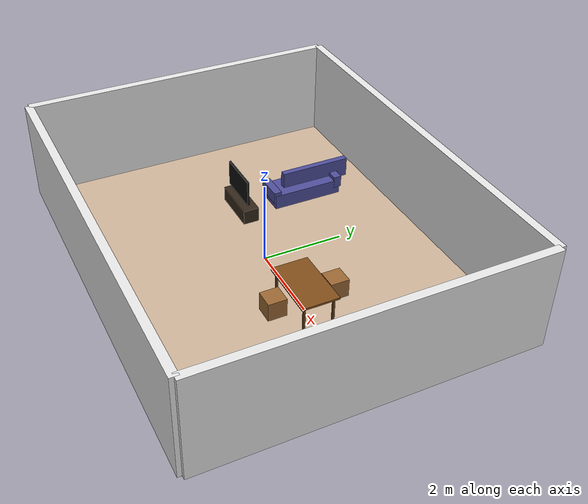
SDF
<?xml version="1.0" ?>
<sdf version="1.6">
  <world name="house">

    <!-- PLUGINS Gazebo Classic -->
    <plugin name="gazebo_ros_state" filename="libgazebo_ros_state.so"/>

    <!-- LUZ -->
    <light type="directional" name="sun">
      <cast_shadows>false</cast_shadows>
      <pose>0 0 10 0 0 0</pose>
      <diffuse>1 1 1 1</diffuse>
      <specular>0.2 0.2 0.2 1</specular>
      <direction>-0.5 0.1 -0.9</direction>
    </light>

    <!-- FÍSICA -->
    <physics type="ode">
      <real_time_update_rate>1000.0</real_time_update_rate>
      <max_step_size>0.001</max_step_size>
      <real_time_factor>1</real_time_factor>
    </physics>

    <!-- ESCENA -->
    <scene>
      <ambient>0.6 0.6 0.6 1</ambient>
      <background>0.8 0.8 0.8 1</background>
      <shadows>false</shadows>
    </scene>

    <!-- SUELO -->
    <model name="floor">
      <static>true</static>
      <pose>0 0 0 0 0 0</pose>
      <link name="link">
        <collision name="collision">
          <geometry><box><size>10 8 0.05</size></box></geometry>
        </collision>
        <visual name="visual">
          <geometry><box><size>10 8 0.05</size></box></geometry>
          <material>
            <ambient>0.8 0.7 0.6 1</ambient>
            <diffuse>0.8 0.7 0.6 1</diffuse>
          </material>
        </visual>
      </link>
    </model>

    <!-- ===== PAREDES EXTERIORES ===== -->

    <model name="wall_south">
      <static>true</static>
      <pose>0 -4 1.25 0 0 0</pose>
      <link name="link">
        <collision name="collision">
          <geometry><box><size>10 0.2 2.5</size></box></geometry>
        </collision>
        <visual name="visual">
          <geometry><box><size>10 0.2 2.5</size></box></geometry>
          <material><ambient>0.9 0.9 0.9 1</ambient></material>
        </visual>
      </link>
    </model>

    <model name="wall_north">
      <static>true</static>
      <pose>0 4 1.25 0 0 0</pose>
      <link name="link">
        <collision name="collision">
          <geometry><box><size>10 0.2 2.5</size></box></geometry>
        </collision>
        <visual name="visual">
          <geometry><box><size>10 0.2 2.5</size></box></geometry>
          <material><ambient>0.9 0.9 0.9 1</ambient></material>
        </visual>
      </link>
    </model>

    <model name="wall_west">
      <static>true</static>
      <pose>-5 0 1.25 0 0 0</pose>
      <link name="link">
        <collision name="collision">
          <geometry><box><size>0.2 8 2.5</size></box></geometry>
        </collision>
        <visual name="visual">
          <geometry><box><size>0.2 8 2.5</size></box></geometry>
          <material><ambient>0.9 0.9 0.9 1</ambient></material>
        </visual>
      </link>
    </model>

    <model name="wall_east">
      <static>true</static>
      <pose>5 0 1.25 0 0 0</pose>
      <link name="link">
        <collision name="collision">
          <geometry><box><size>0.2 8 2.5</size></box></geometry>
        </collision>
        <visual name="visual">
          <geometry><box><size>0.2 8 2.5</size></box></geometry>
          <material><ambient>0.9 0.9 0.9 1</ambient></material>
        </visual>
      </link>
    </model>

    <!-- ===== SALÓN ===== -->

    <!-- SOFÁ: base + respaldo + brazos -->
    <model name="sofa_base">
      <static>true</static>
      <pose>-2 2 0.2 0 0 -1.57</pose>
      <link name="link">
        <collision name="collision">
          <geometry><box><size>1.8 0.7 0.4</size></box></geometry>
        </collision>
        <visual name="visual">
          <geometry><box><size>1.8 0.7 0.4</size></box></geometry>
          <material><ambient>0.3 0.3 0.6 1</ambient><diffuse>0.3 0.3 0.6 1</diffuse></material>
        </visual>
      </link>
    </model>

    <model name="sofa_back">
      <static>true</static>
      <pose>-2 2.35 0.55 0 0 -1.57</pose>
      <link name="link">
        <collision name="collision">
          <geometry><box><size>1.8 0.15 0.5</size></box></geometry>
        </collision>
        <visual name="visual">
          <geometry><box><size>1.8 0.15 0.5</size></box></geometry>
          <material><ambient>0.3 0.3 0.6 1</ambient><diffuse>0.3 0.3 0.6 1</diffuse></material>
        </visual>
      </link>
    </model>

    <model name="sofa_arm_left">
      <static>true</static>
      <pose>-2 1.15 0.35 0 0 -1.57</pose>
      <link name="link">
        <collision name="collision">
          <geometry><box><size>0.2 0.7 0.3</size></box></geometry>
        </collision>
        <visual name="visual">
          <geometry><box><size>0.2 0.7 0.3</size></box></geometry>
          <material><ambient>0.3 0.3 0.6 1</ambient></material>
        </visual>
      </link>
    </model>

    <model name="sofa_arm_right">
      <static>true</static>
      <pose>-2 2.85 0.35 0 0 -1.57</pose>
      <link name="link">
        <collision name="collision">
          <geometry><box><size>0.2 0.7 0.3</size></box></geometry>
        </collision>
        <visual name="visual">
          <geometry><box><size>0.2 0.7 0.3</size></box></geometry>
          <material><ambient>0.3 0.3 0.6 1</ambient></material>
        </visual>
      </link>
    </model>

    <!-- MUEBLE TV -->
    <model name="tv_stand">
      <static>true</static>
      <pose>-2 0.3 0.2 0 0 0</pose>
      <link name="link">
        <collision name="collision">
          <geometry><box><size>1.2 0.4 0.4</size></box></geometry>
        </collision>
        <visual name="visual">
          <geometry><box><size>1.2 0.4 0.4</size></box></geometry>
          <material><ambient>0.2 0.15 0.1 1</ambient><diffuse>0.2 0.15 0.1 1</diffuse></material>
        </visual>
      </link>
    </model>

    <!-- TELEVISIÓN -->
    <model name="tv_screen">
      <static>true</static>
      <pose>-2 0.25 0.85 0 0 0</pose>
      <link name="link">
        <collision name="collision">
          <geometry><box><size>1.1 0.05 0.65</size></box></geometry>
        </collision>
        <visual name="visual">
          <geometry><box><size>1.1 0.05 0.65</size></box></geometry>
          <material><ambient>0.05 0.05 0.05 1</ambient><diffuse>0.05 0.05 0.05 1</diffuse></material>
        </visual>
      </link>
    </model>

    <!-- ===== COMEDOR ===== -->

    <!-- MESA COMEDOR -->
    <model name="dining_table_top">
      <static>true</static>
      <pose>2 0 0.75 0 0 0</pose>
      <link name="link">
        <collision name="collision">
          <geometry><box><size>1.5 0.9 0.05</size></box></geometry>
        </collision>
        <visual name="visual">
          <geometry><box><size>1.5 0.9 0.05</size></box></geometry>
          <material><ambient>0.5 0.3 0.1 1</ambient><diffuse>0.5 0.3 0.1 1</diffuse></material>
        </visual>
      </link>
    </model>

    <model name="dining_table_leg1">
      <static>true</static>
      <pose>2.65 0.35 0.375 0 0 0</pose>
      <link name="link">
        <collision name="collision">
          <geometry><box><size>0.05 0.05 0.75</size></box></geometry>
        </collision>
        <visual name="visual">
          <geometry><box><size>0.05 0.05 0.75</size></box></geometry>
          <material><ambient>0.4 0.25 0.1 1</ambient></material>
        </visual>
      </link>
    </model>

    <model name="dining_table_leg2">
      <static>true</static>
      <pose>1.35 0.35 0.375 0 0 0</pose>
      <link name="link">
        <collision name="collision">
          <geometry><box><size>0.05 0.05 0.75</size></box></geometry>
        </collision>
        <visual name="visual">
          <geometry><box><size>0.05 0.05 0.75</size></box></geometry>
          <material><ambient>0.4 0.25 0.1 1</ambient></material>
        </visual>
      </link>
    </model>

    <model name="dining_table_leg3">
      <static>true</static>
      <pose>2.65 -0.35 0.375 0 0 0</pose>
      <link name="link">
        <collision name="collision">
          <geometry><box><size>0.05 0.05 0.75</size></box></geometry>
        </collision>
        <visual name="visual">
          <geometry><box><size>0.05 0.05 0.75</size></box></geometry>
          <material><ambient>0.4 0.25 0.1 1</ambient></material>
        </visual>
      </link>
    </model>

    <model name="dining_table_leg4">
      <static>true</static>
      <pose>1.35 -0.35 0.375 0 0 0</pose>
      <link name="link">
        <collision name="collision">
          <geometry><box><size>0.05 0.05 0.75</size></box></geometry>
        </collision>
        <visual name="visual">
          <geometry><box><size>0.05 0.05 0.75</size></box></geometry>
          <material><ambient>0.4 0.25 0.1 1</ambient></material>
        </visual>
      </link>
    </model>

    <!-- SILLAS COMEDOR -->
    <model name="chair_1">
      <static>true</static>
      <pose>2 0.75 0.45 0 0 0</pose>
      <link name="link">
        <collision name="collision">
          <geometry><box><size>0.45 0.45 0.45</size></box></geometry>
        </collision>
        <visual name="visual">
          <geometry><box><size>0.45 0.45 0.45</size></box></geometry>
          <material><ambient>0.6 0.4 0.2 1</ambient></material>
        </visual>
      </link>
    </model>

    <model name="chair_2">
      <static>true</static>
      <pose>2 -0.75 0.45 0 0 0</pose>
      <link name="link">
        <collision name="collision">
          <geometry><box><size>0.45 0.45 0.45</size></box></geometry>
        </collision>
        <visual name="visual">
          <geometry><box><size>0.45 0.45 0.45</size></box></geometry>
          <material><ambient>0.6 0.4 0.2 1</ambient></material>
        </visual>
      </link>
    </model>

  </world>
</sdf>
